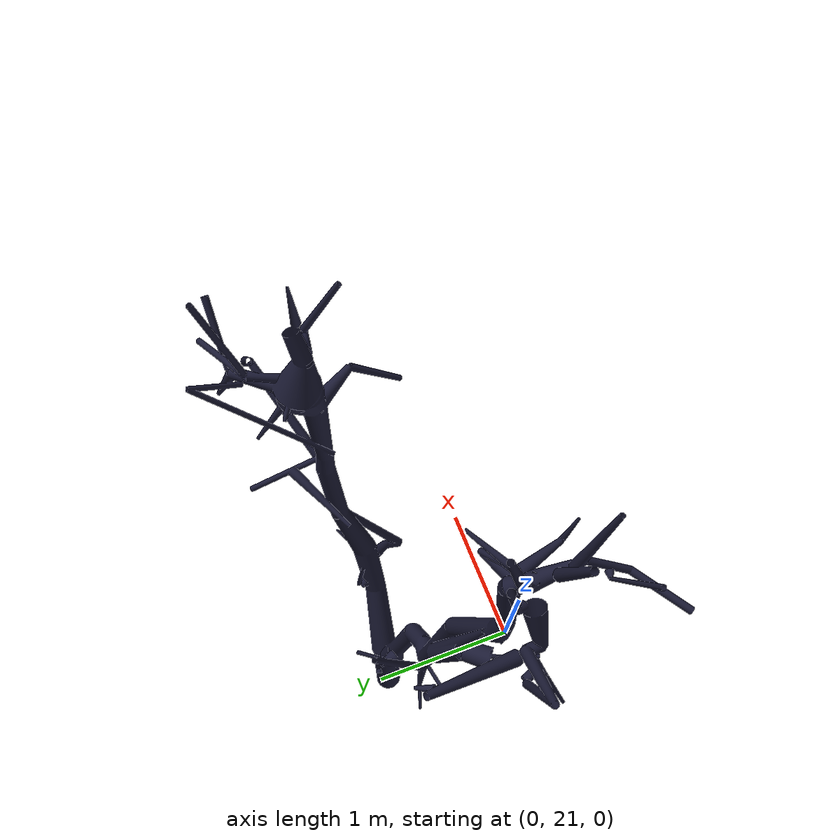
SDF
<?xml version="1.0" ?>
<sdf version="1.5">
  <model name="tree_peach_10">
    <static>true</static>
    <link name="link">
      <pose>0 0 0 0 0 0</pose>
      <inertial>
        <mass>0.0354</mass>
        <inertia>
          <ixx>4.1178128125e-05</ixx>
          <ixy>0</ixy>
          <ixz>0</ixz>
          <iyy>4.1178128125e-05</iyy>
          <iyz>0</iyz>
          <izz>5.005781250000001e-06</izz>
        </inertia>
      </inertial>

      <visual name="visual">
        <geometry>
          <mesh>
            <uri>model://tree_peach_10/meshes/tree_peach_10.STL</uri>
            <scale>1 1 1</scale>
          </mesh>
        </geometry>
        <material> <!-- Wheel material -->
          <ambient>1 1 0.1 1</ambient>
          <diffuse>0.1 0.1 0.2 1</diffuse>
          <specular>0 0 0 0</specular>
          <emissive>0 0 0 1</emissive>
        </material> <!-- End wheel material -->
      </visual>

    </link>
  </model>
</sdf>
